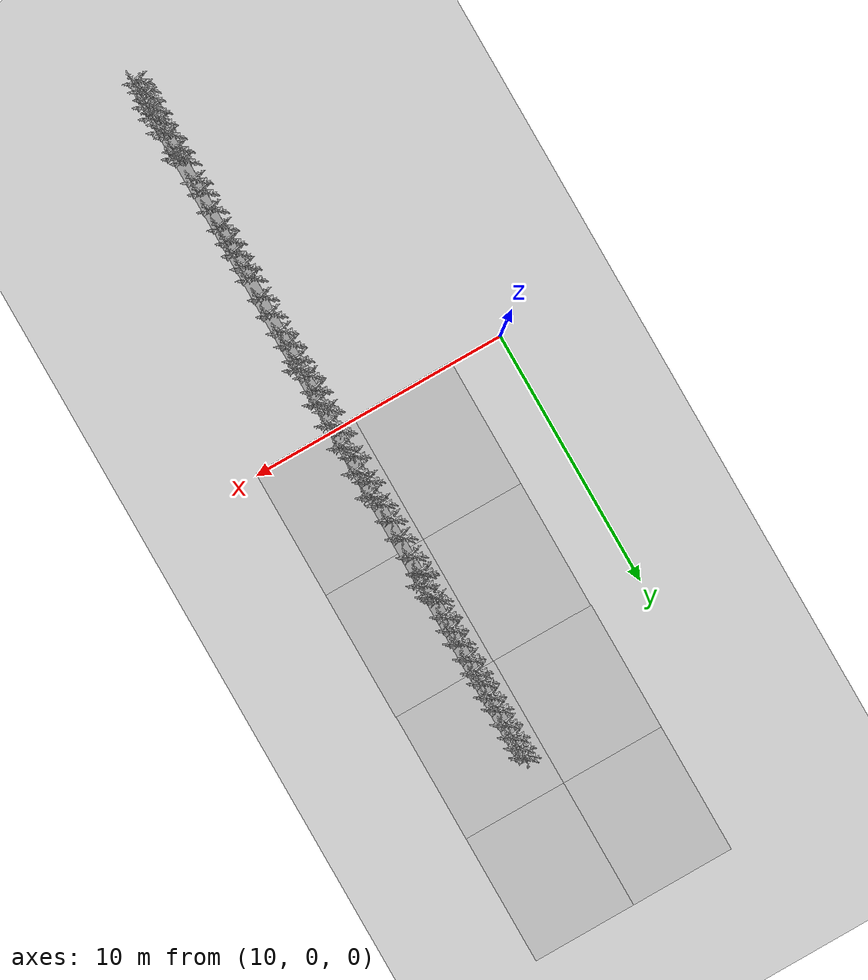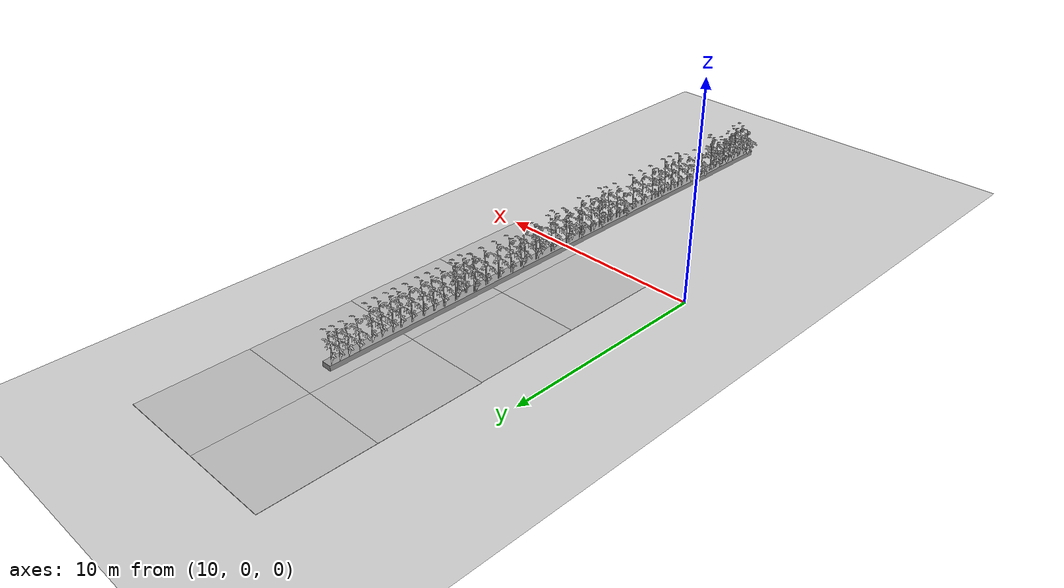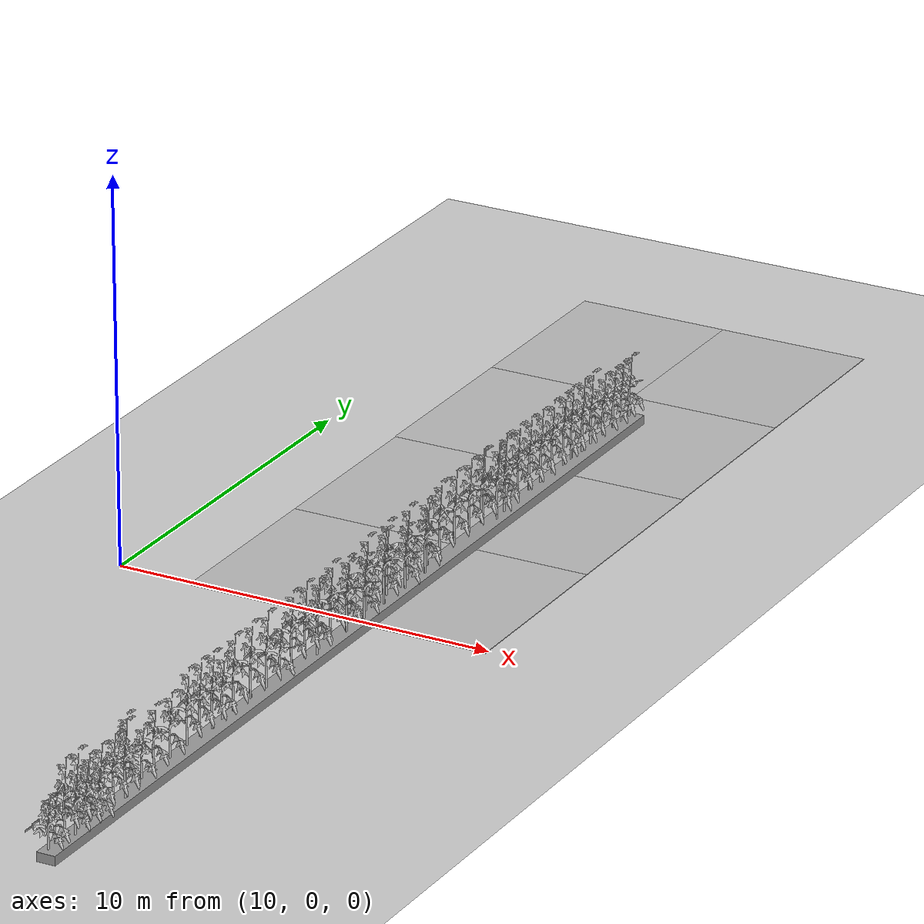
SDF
<sdf version="1.6">
 <world name="default">
  <model name="ground_plane">
   <static>1</static>
   <link name="link">
    <collision name="collision">
     <geometry><plane><normal>0 0 1</normal><size>100 100</size></plane></geometry>
     <surface>
      <contact><collide_bitmask>65535</collide_bitmask></contact>
      <friction><ode><mu>100</mu><mu2>50</mu2></ode></friction>
     </surface>
    </collision>
    <visual name="visual">
     <cast_shadows>0</cast_shadows>
     <geometry><plane><normal>0 0 1</normal><size>100 100</size></plane></geometry>
     <material>
      <script><uri>file://media/materials/scripts/gazebo.material</uri><name>Gazebo/Grey</name></script>
     </material>
    </visual>
   </link>
  </model>
  <model name="mud_box_2">
   <static>1</static>
   <link name="link">
    <collision name="collision"><geometry><box><size>8 10 0.02</size></box></geometry></collision>
    <visual name="visual_1">
     <pose>-2 2.5 0 0 -0 0</pose>
     <cast_shadows>0</cast_shadows>
     <geometry><box><size>4 5 0.02</size></box></geometry>
     <material>
      <script>
       <uri>model://mud_box/materials/scripts</uri>
       <uri>model://mud_box/materials/textures</uri>
       <name>vrc/mud</name>
      </script>
     </material>
    </visual>
    <visual name="visual_2">
     <pose>2 2.5 0 0 -0 0</pose>
     <cast_shadows>0</cast_shadows>
     <geometry><box><size>4 5 0.02</size></box></geometry>
     <material>
      <script>
       <uri>model://mud_box/materials/scripts</uri>
       <uri>model://mud_box/materials/textures</uri>
       <name>vrc/mud</name>
      </script>
     </material>
    </visual>
    <visual name="visual_3">
     <pose>2 -2.5 0 0 -0 0</pose>
     <cast_shadows>0</cast_shadows>
     <geometry><box><size>4 5 0.02</size></box></geometry>
     <material>
      <script>
       <uri>model://mud_box/materials/scripts</uri>
       <uri>model://mud_box/materials/textures</uri>
       <name>vrc/mud</name>
      </script>
     </material>
    </visual>
    <visual name="visual_4">
     <pose>-2 -2.5 0 0 -0 0</pose>
     <cast_shadows>0</cast_shadows>
     <geometry><box><size>4 5 0.02</size></box></geometry>
     <material>
      <script>
       <uri>model://mud_box/materials/scripts</uri>
       <uri>model://mud_box/materials/textures</uri>
       <name>vrc/mud</name>
      </script>
     </material>
    </visual>
   </link>
   <pose>15.95 14.8768 0 0 -0 0</pose>
  </model>
  <model name="mud_box_2_clone_3">
   <static>1</static>
   <link name="link">
    <collision name="collision"><geometry><box><size>8 10 0.02</size></box></geometry></collision>
    <visual name="visual_1">
     <pose>-2 2.5 0 0 -0 0</pose>
     <cast_shadows>0</cast_shadows>
     <geometry><box><size>4 5 0.02</size></box></geometry>
     <material>
      <script>
       <uri>model://mud_box/materials/scripts</uri>
       <uri>model://mud_box/materials/textures</uri>
       <name>vrc/mud</name>
      </script>
     </material>
    </visual>
    <visual name="visual_2">
     <pose>2 2.5 0 0 -0 0</pose>
     <cast_shadows>0</cast_shadows>
     <geometry><box><size>4 5 0.02</size></box></geometry>
     <material>
      <script>
       <uri>model://mud_box/materials/scripts</uri>
       <uri>model://mud_box/materials/textures</uri>
       <name>vrc/mud</name>
      </script>
     </material>
    </visual>
    <visual name="visual_3">
     <pose>2 -2.5 0 0 -0 0</pose>
     <cast_shadows>0</cast_shadows>
     <geometry><box><size>4 5 0.02</size></box></geometry>
     <material>
      <script>
       <uri>model://mud_box/materials/scripts</uri>
       <uri>model://mud_box/materials/textures</uri>
       <name>vrc/mud</name>
      </script>
     </material>
    </visual>
    <visual name="visual_4">
     <pose>-2 -2.5 0 0 -0 0</pose>
     <cast_shadows>0</cast_shadows>
     <geometry><box><size>4 5 0.02</size></box></geometry>
     <material>
      <script>
       <uri>model://mud_box/materials/scripts</uri>
       <uri>model://mud_box/materials/textures</uri>
       <name>vrc/mud</name>
      </script>
     </material>
    </visual>
   </link>
   <pose>15.9717 4.88727 0 0 -0 0</pose>
  </model>
  <model name="plant_base_clone_clone_0_clone">
   <link name="link">
    <inertial>
     <mass>1</mass>
     <inertia>
      <ixx>0.166667</ixx>
      <ixy>0</ixy>
      <ixz>0</ixz>
      <iyy>0.166667</iyy>
      <iyz>0</iyz>
      <izz>0.166667</izz>
     </inertia>
    </inertial>
    <visual name="visual">
     <geometry><box><size>0.484753 27.8593 0.235695</size></box></geometry>
     <material>
      <script><name>Gazebo/Grey</name><uri>file://media/materials/scripts/gazebo.material</uri></script>
     </material>
    </visual>
    <collision name="collision">
     <geometry><box><size>0.484753 27.8593 0.235695</size></box></geometry>
     <surface>
      <friction>
       <ode><mu>1</mu><mu2>1</mu2><fdir1>0 0 0</fdir1><slip1>0</slip1><slip2>0</slip2></ode>
       <torsional>
        <coefficient>1</coefficient>
        <patch_radius>0</patch_radius>
        <surface_radius>0</surface_radius>
        <use_patch_radius>1</use_patch_radius>
        <ode><slip>0</slip></ode>
       </torsional>
      </friction>
      <bounce><restitution_coefficient>0</restitution_coefficient><threshold>1e+06</threshold></bounce>
      <contact>
       <collide_without_contact>0</collide_without_contact>
       <collide_without_contact_bitmask>1</collide_without_contact_bitmask>
       <collide_bitmask>1</collide_bitmask>
       <ode>
        <soft_cfm>0</soft_cfm>
        <soft_erp>0.2</soft_erp>
        <kp>1e+13</kp>
        <kd>1</kd>
        <max_vel>0.01</max_vel>
        <min_depth>0</min_depth>
       </ode>
       <bullet>
        <split_impulse>1</split_impulse>
        <split_impulse_penetration_threshold>-0.01</split_impulse_penetration_threshold>
        <soft_cfm>0</soft_cfm>
        <soft_erp>0.2</soft_erp>
        <kp>1e+13</kp>
        <kd>1</kd>
       </bullet>
      </contact>
     </surface>
    </collision>
   </link>
   <static>1</static>
   <pose>16.7542 -0.411562 0.134309 0 -0 0</pose>
  </model>
  <model name="tomato_plant_medium_11">
   <static>1</static>
   <link name="link">
    <collision name="collision">
     <geometry>
      <mesh><scale>5e-06 5e-06 6e-06</scale><uri>model://tomato_plant_medium/meshes/tomato-plant.dae</uri></mesh>
     </geometry>
    </collision>
    <visual name="visual">
     <geometry>
      <mesh><scale>5e-06 5e-06 6e-06</scale><uri>model://tomato_plant_medium/meshes/tomato-plant.dae</uri></mesh>
     </geometry>
    </visual>
   </link>
   <pose>16.6663 12.9 0 0 -0 0</pose>
  </model>
  <model name="tomato_plant_medium_12">
   <static>1</static>
   <link name="link">
    <collision name="collision">
     <geometry>
      <mesh><scale>5e-06 5e-06 6e-06</scale><uri>model://tomato_plant_medium/meshes/tomato-plant.dae</uri></mesh>
     </geometry>
    </collision>
    <visual name="visual">
     <geometry>
      <mesh><scale>5e-06 5e-06 6e-06</scale><uri>model://tomato_plant_medium/meshes/tomato-plant.dae</uri></mesh>
     </geometry>
    </visual>
   </link>
   <pose>16.7001 13.2713 0.021757 0 -0 0</pose>
  </model>
  <model name="tomato_plant_medium_13">
   <static>1</static>
   <link name="link">
    <collision name="collision">
     <geometry>
      <mesh><scale>5e-06 5e-06 6e-06</scale><uri>model://tomato_plant_medium/meshes/tomato-plant.dae</uri></mesh>
     </geometry>
    </collision>
    <visual name="visual">
     <geometry>
      <mesh><scale>5e-06 5e-06 6e-06</scale><uri>model://tomato_plant_medium/meshes/tomato-plant.dae</uri></mesh>
     </geometry>
    </visual>
   </link>
   <pose>16.683 12.4521 0 0 -0 0</pose>
  </model>
  <model name="tomato_plant_medium_15">
   <static>1</static>
   <link name="link">
    <collision name="collision">
     <geometry>
      <mesh><scale>5e-06 5e-06 6e-06</scale><uri>model://tomato_plant_medium/meshes/tomato-plant.dae</uri></mesh>
     </geometry>
    </collision>
    <visual name="visual">
     <geometry>
      <mesh><scale>5e-06 5e-06 6e-06</scale><uri>model://tomato_plant_medium/meshes/tomato-plant.dae</uri></mesh>
     </geometry>
    </visual>
   </link>
   <pose>16.6728 11.9349 0 0 -0 0</pose>
  </model>
  <model name="tomato_plant_big_0">
   <static>1</static>
   <link name="link">
    <collision name="collision">
     <geometry>
      <mesh><scale>5e-06 5e-06 6e-06</scale><uri>model://tomato_plant_big/meshes/tomato-plant.dae</uri></mesh>
     </geometry>
    </collision>
    <visual name="visual">
     <geometry>
      <mesh><scale>5e-06 5e-06 7e-06</scale><uri>model://tomato_plant_big/meshes/tomato-plant.dae</uri></mesh>
     </geometry>
    </visual>
   </link>
   <pose>16.6663 11.3037 0 0 -0 0</pose>
  </model>
  <model name="tomato_plant_big_2">
   <static>1</static>
   <link name="link">
    <collision name="collision">
     <geometry>
      <mesh><scale>5e-06 5e-06 6e-06</scale><uri>model://tomato_plant_big/meshes/tomato-plant.dae</uri></mesh>
     </geometry>
    </collision>
    <visual name="visual">
     <geometry>
      <mesh><scale>5e-06 5e-06 7e-06</scale><uri>model://tomato_plant_big/meshes/tomato-plant.dae</uri></mesh>
     </geometry>
    </visual>
   </link>
   <pose>16.6968 10.7975 0 0 -0 0</pose>
  </model>
  <model name="tomato_plant_big_4">
   <static>1</static>
   <link name="link">
    <collision name="collision">
     <geometry>
      <mesh><scale>5e-06 5e-06 6e-06</scale><uri>model://tomato_plant_big/meshes/tomato-plant.dae</uri></mesh>
     </geometry>
    </collision>
    <visual name="visual">
     <geometry>
      <mesh><scale>5e-06 5e-06 7e-06</scale><uri>model://tomato_plant_big/meshes/tomato-plant.dae</uri></mesh>
     </geometry>
    </visual>
   </link>
   <pose>16.6745 10.2599 0 0 -0 0</pose>
  </model>
  <model name="tomato_plant_big_6">
   <static>1</static>
   <link name="link">
    <collision name="collision">
     <geometry>
      <mesh><scale>5e-06 5e-06 6e-06</scale><uri>model://tomato_plant_big/meshes/tomato-plant.dae</uri></mesh>
     </geometry>
    </collision>
    <visual name="visual">
     <geometry>
      <mesh><scale>5e-06 5e-06 7e-06</scale><uri>model://tomato_plant_big/meshes/tomato-plant.dae</uri></mesh>
     </geometry>
    </visual>
   </link>
   <pose>16.6882 9.83508 0 0 -0 0</pose>
  </model>
  <model name="tomato_plant_big_8">
   <static>1</static>
   <link name="link">
    <collision name="collision">
     <geometry>
      <mesh><scale>5e-06 5e-06 6e-06</scale><uri>model://tomato_plant_big/meshes/tomato-plant.dae</uri></mesh>
     </geometry>
    </collision>
    <visual name="visual">
     <geometry>
      <mesh><scale>5e-06 5e-06 7e-06</scale><uri>model://tomato_plant_big/meshes/tomato-plant.dae</uri></mesh>
     </geometry>
    </visual>
   </link>
   <pose>16.6704 9.2785 0 0 -0 0</pose>
  </model>
  <model name="tomato_plant_big_10">
   <static>1</static>
   <link name="link">
    <collision name="collision">
     <geometry>
      <mesh><scale>5e-06 5e-06 6e-06</scale><uri>model://tomato_plant_big/meshes/tomato-plant.dae</uri></mesh>
     </geometry>
    </collision>
    <visual name="visual">
     <geometry>
      <mesh><scale>5e-06 5e-06 7e-06</scale><uri>model://tomato_plant_big/meshes/tomato-plant.dae</uri></mesh>
     </geometry>
    </visual>
   </link>
   <pose>16.7063 8.63368 0 0 -0 0</pose>
  </model>
  <model name="tomato_plant_big_14">
   <static>1</static>
   <link name="link">
    <collision name="collision">
     <geometry>
      <mesh><scale>5e-06 5e-06 6e-06</scale><uri>model://tomato_plant_big/meshes/tomato-plant.dae</uri></mesh>
     </geometry>
    </collision>
    <visual name="visual">
     <geometry>
      <mesh><scale>5e-06 5e-06 7e-06</scale><uri>model://tomato_plant_big/meshes/tomato-plant.dae</uri></mesh>
     </geometry>
    </visual>
   </link>
   <pose>16.6728 8.11093 0 0 -0 0</pose>
  </model>
  <model name="tomato_plant_big_16">
   <static>1</static>
   <link name="link">
    <collision name="collision">
     <geometry>
      <mesh><scale>5e-06 5e-06 6e-06</scale><uri>model://tomato_plant_big/meshes/tomato-plant.dae</uri></mesh>
     </geometry>
    </collision>
    <visual name="visual">
     <geometry>
      <mesh><scale>5e-06 5e-06 7e-06</scale><uri>model://tomato_plant_big/meshes/tomato-plant.dae</uri></mesh>
     </geometry>
    </visual>
   </link>
   <pose>16.6437 7.58312 0 0 -0 0</pose>
  </model>
  <model name="tomato_plant_big_18">
   <static>1</static>
   <link name="link">
    <collision name="collision">
     <geometry>
      <mesh><scale>5e-06 5e-06 6e-06</scale><uri>model://tomato_plant_big/meshes/tomato-plant.dae</uri></mesh>
     </geometry>
    </collision>
    <visual name="visual">
     <geometry>
      <mesh><scale>5e-06 5e-06 7e-06</scale><uri>model://tomato_plant_big/meshes/tomato-plant.dae</uri></mesh>
     </geometry>
    </visual>
   </link>
   <pose>16.6313 6.93426 0 0 -0 0</pose>
  </model>
  <model name="tomato_plant_big_19">
   <static>1</static>
   <link name="link">
    <collision name="collision">
     <geometry>
      <mesh><scale>5e-06 5e-06 6e-06</scale><uri>model://tomato_plant_big/meshes/tomato-plant.dae</uri></mesh>
     </geometry>
    </collision>
    <visual name="visual">
     <geometry>
      <mesh><scale>5e-06 5e-06 7e-06</scale><uri>model://tomato_plant_big/meshes/tomato-plant.dae</uri></mesh>
     </geometry>
    </visual>
   </link>
   <pose>16.8073 6.22622 0 0 -0 0</pose>
  </model>
  <model name="tomato_plant_big_20">
   <static>1</static>
   <link name="link">
    <collision name="collision">
     <geometry>
      <mesh><scale>5e-06 5e-06 6e-06</scale><uri>model://tomato_plant_big/meshes/tomato-plant.dae</uri></mesh>
     </geometry>
    </collision>
    <visual name="visual">
     <geometry>
      <mesh><scale>5e-06 5e-06 7e-06</scale><uri>model://tomato_plant_big/meshes/tomato-plant.dae</uri></mesh>
     </geometry>
    </visual>
   </link>
   <pose>16.6107 5.88926 0 0 -0 0</pose>
  </model>
  <model name="tomato_plant_big_22">
   <static>1</static>
   <link name="link">
    <collision name="collision">
     <geometry>
      <mesh><scale>5e-06 5e-06 6e-06</scale><uri>model://tomato_plant_big/meshes/tomato-plant.dae</uri></mesh>
     </geometry>
    </collision>
    <visual name="visual">
     <geometry>
      <mesh><scale>5e-06 5e-06 7e-06</scale><uri>model://tomato_plant_big/meshes/tomato-plant.dae</uri></mesh>
     </geometry>
    </visual>
   </link>
   <pose>16.5972 5.83716 0 0 -0 0</pose>
  </model>
  <model name="tomato_plant_big_24">
   <static>1</static>
   <link name="link">
    <collision name="collision">
     <geometry>
      <mesh><scale>5e-06 5e-06 6e-06</scale><uri>model://tomato_plant_big/meshes/tomato-plant.dae</uri></mesh>
     </geometry>
    </collision>
    <visual name="visual">
     <geometry>
      <mesh><scale>5e-06 5e-06 7e-06</scale><uri>model://tomato_plant_big/meshes/tomato-plant.dae</uri></mesh>
     </geometry>
    </visual>
   </link>
   <pose>16.6268 5.17489 0 0 -0 0</pose>
  </model>
  <model name="tomato_plant_big_26">
   <static>1</static>
   <link name="link">
    <collision name="collision">
     <geometry>
      <mesh><scale>5e-06 5e-06 6e-06</scale><uri>model://tomato_plant_big/meshes/tomato-plant.dae</uri></mesh>
     </geometry>
    </collision>
    <visual name="visual">
     <geometry>
      <mesh><scale>5e-06 5e-06 7e-06</scale><uri>model://tomato_plant_big/meshes/tomato-plant.dae</uri></mesh>
     </geometry>
    </visual>
   </link>
   <pose>16.6396 4.42277 0 0 -0 0</pose>
  </model>
  <model name="tomato_plant_big_28">
   <static>1</static>
   <link name="link">
    <collision name="collision">
     <geometry>
      <mesh><scale>5e-06 5e-06 6e-06</scale><uri>model://tomato_plant_big/meshes/tomato-plant.dae</uri></mesh>
     </geometry>
    </collision>
    <visual name="visual">
     <geometry>
      <mesh><scale>5e-06 5e-06 7e-06</scale><uri>model://tomato_plant_big/meshes/tomato-plant.dae</uri></mesh>
     </geometry>
    </visual>
   </link>
   <pose>16.6302 3.69515 0 0 -0 0</pose>
  </model>
  <model name="tomato_plant_medium_28">
   <static>1</static>
   <link name="link">
    <collision name="collision">
     <geometry>
      <mesh><scale>5e-06 5e-06 6e-06</scale><uri>model://tomato_plant_medium/meshes/tomato-plant.dae</uri></mesh>
     </geometry>
    </collision>
    <visual name="visual">
     <geometry>
      <mesh><scale>5e-06 5e-06 6e-06</scale><uri>model://tomato_plant_medium/meshes/tomato-plant.dae</uri></mesh>
     </geometry>
    </visual>
   </link>
   <pose>16.6557 3.03767 0 0 -0 0</pose>
  </model>
  <model name="tomato_plant_big_30">
   <static>1</static>
   <link name="link">
    <collision name="collision">
     <geometry>
      <mesh><scale>5e-06 5e-06 6e-06</scale><uri>model://tomato_plant_big/meshes/tomato-plant.dae</uri></mesh>
     </geometry>
    </collision>
    <visual name="visual">
     <geometry>
      <mesh><scale>5e-06 5e-06 7e-06</scale><uri>model://tomato_plant_big/meshes/tomato-plant.dae</uri></mesh>
     </geometry>
    </visual>
   </link>
   <pose>16.8343 2.6317 0 0 -0 0</pose>
  </model>
  <model name="tomato_plant_big_31">
   <static>1</static>
   <link name="link">
    <collision name="collision">
     <geometry>
      <mesh><scale>5e-06 5e-06 6e-06</scale><uri>model://tomato_plant_big/meshes/tomato-plant.dae</uri></mesh>
     </geometry>
    </collision>
    <visual name="visual">
     <geometry>
      <mesh><scale>5e-06 5e-06 7e-06</scale><uri>model://tomato_plant_big/meshes/tomato-plant.dae</uri></mesh>
     </geometry>
    </visual>
   </link>
   <pose>16.6389 2.11003 0 0 -0 0</pose>
  </model>
  <model name="tomato_plant_medium_29">
   <static>1</static>
   <link name="link">
    <collision name="collision">
     <geometry>
      <mesh><scale>5e-06 5e-06 6e-06</scale><uri>model://tomato_plant_medium/meshes/tomato-plant.dae</uri></mesh>
     </geometry>
    </collision>
    <visual name="visual">
     <geometry>
      <mesh><scale>5e-06 5e-06 6e-06</scale><uri>model://tomato_plant_medium/meshes/tomato-plant.dae</uri></mesh>
     </geometry>
    </visual>
   </link>
   <pose>16.8288 1.66908 0 0 -0 0</pose>
  </model>
  <model name="tomato_plant_big_32">
   <static>1</static>
   <link name="link">
    <collision name="collision">
     <geometry>
      <mesh><scale>5e-06 5e-06 6e-06</scale><uri>model://tomato_plant_big/meshes/tomato-plant.dae</uri></mesh>
     </geometry>
    </collision>
    <visual name="visual">
     <geometry>
      <mesh><scale>5e-06 5e-06 7e-06</scale><uri>model://tomato_plant_big/meshes/tomato-plant.dae</uri></mesh>
     </geometry>
    </visual>
   </link>
   <pose>16.6395 1.11249 0 0 -0 0</pose>
  </model>
  <model name="tomato_plant_big_33">
   <static>1</static>
   <link name="link">
    <collision name="collision">
     <geometry>
      <mesh><scale>5e-06 5e-06 6e-06</scale><uri>model://tomato_plant_big/meshes/tomato-plant.dae</uri></mesh>
     </geometry>
    </collision>
    <visual name="visual">
     <geometry>
      <mesh><scale>5e-06 5e-06 7e-06</scale><uri>model://tomato_plant_big/meshes/tomato-plant.dae</uri></mesh>
     </geometry>
    </visual>
   </link>
   <pose>16.8267 0.645431 0 0 -0 0</pose>
  </model>
  <model name="tomato_plant_big_34">
   <static>1</static>
   <link name="link">
    <collision name="collision">
     <geometry>
      <mesh><scale>5e-06 5e-06 6e-06</scale><uri>model://tomato_plant_big/meshes/tomato-plant.dae</uri></mesh>
     </geometry>
    </collision>
    <visual name="visual">
     <geometry>
      <mesh><scale>5e-06 5e-06 7e-06</scale><uri>model://tomato_plant_big/meshes/tomato-plant.dae</uri></mesh>
     </geometry>
    </visual>
   </link>
   <pose>16.636 0.127232 0 0 -0 0</pose>
  </model>
  <model name="tomato_plant_medium_30">
   <static>1</static>
   <link name="link">
    <collision name="collision">
     <geometry>
      <mesh><scale>5e-06 5e-06 6e-06</scale><uri>model://tomato_plant_medium/meshes/tomato-plant.dae</uri></mesh>
     </geometry>
    </collision>
    <visual name="visual">
     <geometry>
      <mesh><scale>5e-06 5e-06 6e-06</scale><uri>model://tomato_plant_medium/meshes/tomato-plant.dae</uri></mesh>
     </geometry>
    </visual>
   </link>
   <pose>16.8214 -0.274519 0 0 -0 0</pose>
  </model>
  <model name="tomato_plant_medium_31">
   <static>1</static>
   <link name="link">
    <collision name="collision">
     <geometry>
      <mesh><scale>5e-06 5e-06 6e-06</scale><uri>model://tomato_plant_medium/meshes/tomato-plant.dae</uri></mesh>
     </geometry>
    </collision>
    <visual name="visual">
     <geometry>
      <mesh><scale>5e-06 5e-06 6e-06</scale><uri>model://tomato_plant_medium/meshes/tomato-plant.dae</uri></mesh>
     </geometry>
    </visual>
   </link>
   <pose>16.6311 -0.74991 0 0 -0 0</pose>
  </model>
  <model name="tomato_plant_big_35">
   <static>1</static>
   <link name="link">
    <collision name="collision">
     <geometry>
      <mesh><scale>5e-06 5e-06 6e-06</scale><uri>model://tomato_plant_big/meshes/tomato-plant.dae</uri></mesh>
     </geometry>
    </collision>
    <visual name="visual">
     <geometry>
      <mesh><scale>5e-06 5e-06 7e-06</scale><uri>model://tomato_plant_big/meshes/tomato-plant.dae</uri></mesh>
     </geometry>
    </visual>
   </link>
   <pose>16.8316 -1.12586 0 0 -0 0</pose>
  </model>
  <model name="tomato_plant_big_36">
   <static>1</static>
   <link name="link">
    <collision name="collision">
     <geometry>
      <mesh><scale>5e-06 5e-06 6e-06</scale><uri>model://tomato_plant_big/meshes/tomato-plant.dae</uri></mesh>
     </geometry>
    </collision>
    <visual name="visual">
     <geometry>
      <mesh><scale>5e-06 5e-06 7e-06</scale><uri>model://tomato_plant_big/meshes/tomato-plant.dae</uri></mesh>
     </geometry>
    </visual>
   </link>
   <pose>16.6424 -1.55478 0 0 -0 0</pose>
  </model>
  <model name="tomato_plant_big_37">
   <static>1</static>
   <link name="link">
    <collision name="collision">
     <geometry>
      <mesh><scale>5e-06 5e-06 6e-06</scale><uri>model://tomato_plant_big/meshes/tomato-plant.dae</uri></mesh>
     </geometry>
    </collision>
    <visual name="visual">
     <geometry>
      <mesh><scale>5e-06 5e-06 7e-06</scale><uri>model://tomato_plant_big/meshes/tomato-plant.dae</uri></mesh>
     </geometry>
    </visual>
   </link>
   <pose>16.7476 6.70737 0 0 -0 0</pose>
  </model>
  <model name="tomato_plant_medium_75">
   <static>1</static>
   <link name="link">
    <collision name="collision">
     <geometry>
      <mesh><scale>5e-06 5e-06 6e-06</scale><uri>model://tomato_plant_medium/meshes/tomato-plant.dae</uri></mesh>
     </geometry>
    </collision>
    <visual name="visual">
     <geometry>
      <mesh><scale>5e-06 5e-06 6e-06</scale><uri>model://tomato_plant_medium/meshes/tomato-plant.dae</uri></mesh>
     </geometry>
    </visual>
   </link>
   <pose>16.6324 -2.1269 0 0 -0 0</pose>
  </model>
  <model name="tomato_plant_big_45">
   <static>1</static>
   <link name="link">
    <collision name="collision">
     <geometry>
      <mesh><scale>5e-06 5e-06 6e-06</scale><uri>model://tomato_plant_big/meshes/tomato-plant.dae</uri></mesh>
     </geometry>
    </collision>
    <visual name="visual">
     <geometry>
      <mesh><scale>5e-06 5e-06 7e-06</scale><uri>model://tomato_plant_big/meshes/tomato-plant.dae</uri></mesh>
     </geometry>
    </visual>
   </link>
   <pose>16.844 -2.5362 0 0 -0 0</pose>
  </model>
  <model name="tomato_plant_big_46">
   <static>1</static>
   <link name="link">
    <collision name="collision">
     <geometry>
      <mesh><scale>5e-06 5e-06 6e-06</scale><uri>model://tomato_plant_big/meshes/tomato-plant.dae</uri></mesh>
     </geometry>
    </collision>
    <visual name="visual">
     <geometry>
      <mesh><scale>5e-06 5e-06 7e-06</scale><uri>model://tomato_plant_big/meshes/tomato-plant.dae</uri></mesh>
     </geometry>
    </visual>
   </link>
   <pose>16.6786 -2.81674 0 0 -0 0</pose>
  </model>
  <model name="tomato_plant_big_47">
   <static>1</static>
   <link name="link">
    <collision name="collision">
     <geometry>
      <mesh><scale>5e-06 5e-06 6e-06</scale><uri>model://tomato_plant_big/meshes/tomato-plant.dae</uri></mesh>
     </geometry>
    </collision>
    <visual name="visual">
     <geometry>
      <mesh><scale>5e-06 5e-06 7e-06</scale><uri>model://tomato_plant_big/meshes/tomato-plant.dae</uri></mesh>
     </geometry>
    </visual>
   </link>
   <pose>16.6604 -3.40263 0 0 -0 0</pose>
  </model>
  <model name="tomato_plant_small_25">
   <static>1</static>
   <link name="link">
    <collision name="collision">
     <geometry>
      <mesh><scale>5e-06 5e-06 5e-06</scale><uri>model://tomato_plant_small/meshes/tomato-plant.dae</uri></mesh>
     </geometry>
    </collision>
    <visual name="visual">
     <geometry>
      <mesh><scale>5e-06 5e-06 5e-06</scale><uri>model://tomato_plant_small/meshes/tomato-plant.dae</uri></mesh>
     </geometry>
    </visual>
   </link>
   <pose>16.6786 -3.96918 -0 0 -0 0</pose>
  </model>
  <model name="tomato_plant_big_51">
   <static>1</static>
   <link name="link">
    <collision name="collision">
     <geometry>
      <mesh><scale>5e-06 5e-06 6e-06</scale><uri>model://tomato_plant_big/meshes/tomato-plant.dae</uri></mesh>
     </geometry>
    </collision>
    <visual name="visual">
     <geometry>
      <mesh><scale>5e-06 5e-06 7e-06</scale><uri>model://tomato_plant_big/meshes/tomato-plant.dae</uri></mesh>
     </geometry>
    </visual>
   </link>
   <pose>16.7159 -4.6447 0 0 -0 0</pose>
  </model>
  <model name="tomato_plant_big_53">
   <static>1</static>
   <link name="link">
    <collision name="collision">
     <geometry>
      <mesh><scale>5e-06 5e-06 6e-06</scale><uri>model://tomato_plant_big/meshes/tomato-plant.dae</uri></mesh>
     </geometry>
    </collision>
    <visual name="visual">
     <geometry>
      <mesh><scale>5e-06 5e-06 7e-06</scale><uri>model://tomato_plant_big/meshes/tomato-plant.dae</uri></mesh>
     </geometry>
    </visual>
   </link>
   <pose>16.6804 -5.30724 0 0 -0 0</pose>
  </model>
  <model name="tomato_plant_big_55">
   <static>1</static>
   <link name="link">
    <collision name="collision">
     <geometry>
      <mesh><scale>5e-06 5e-06 6e-06</scale><uri>model://tomato_plant_big/meshes/tomato-plant.dae</uri></mesh>
     </geometry>
    </collision>
    <visual name="visual">
     <geometry>
      <mesh><scale>5e-06 5e-06 7e-06</scale><uri>model://tomato_plant_big/meshes/tomato-plant.dae</uri></mesh>
     </geometry>
    </visual>
   </link>
   <pose>16.6864 -6.08791 0 0 -0 0</pose>
  </model>
  <model name="tomato_plant_medium_77">
   <static>1</static>
   <link name="link">
    <collision name="collision">
     <geometry>
      <mesh><scale>5e-06 5e-06 6e-06</scale><uri>model://tomato_plant_medium/meshes/tomato-plant.dae</uri></mesh>
     </geometry>
    </collision>
    <visual name="visual">
     <geometry>
      <mesh><scale>5e-06 5e-06 6e-06</scale><uri>model://tomato_plant_medium/meshes/tomato-plant.dae</uri></mesh>
     </geometry>
    </visual>
   </link>
   <pose>16.6732 -6.57129 0 0 -0 0</pose>
  </model>
  <model name="tomato_plant_big_57">
   <static>1</static>
   <link name="link">
    <collision name="collision">
     <geometry>
      <mesh><scale>5e-06 5e-06 6e-06</scale><uri>model://tomato_plant_big/meshes/tomato-plant.dae</uri></mesh>
     </geometry>
    </collision>
    <visual name="visual">
     <geometry>
      <mesh><scale>5e-06 5e-06 7e-06</scale><uri>model://tomato_plant_big/meshes/tomato-plant.dae</uri></mesh>
     </geometry>
    </visual>
   </link>
   <pose>16.7236 -7.11004 0 0 -0 0</pose>
  </model>
  <model name="tomato_plant_big_58">
   <static>1</static>
   <link name="link">
    <collision name="collision">
     <geometry>
      <mesh><scale>5e-06 5e-06 6e-06</scale><uri>model://tomato_plant_big/meshes/tomato-plant.dae</uri></mesh>
     </geometry>
    </collision>
    <visual name="visual">
     <geometry>
      <mesh><scale>5e-06 5e-06 7e-06</scale><uri>model://tomato_plant_big/meshes/tomato-plant.dae</uri></mesh>
     </geometry>
    </visual>
   </link>
   <pose>16.6824 -7.58839 0 0 -0 0</pose>
  </model>
  <model name="tomato_plant_big_60">
   <static>1</static>
   <link name="link">
    <collision name="collision">
     <geometry>
      <mesh><scale>5e-06 5e-06 6e-06</scale><uri>model://tomato_plant_big/meshes/tomato-plant.dae</uri></mesh>
     </geometry>
    </collision>
    <visual name="visual">
     <geometry>
      <mesh><scale>5e-06 5e-06 7e-06</scale><uri>model://tomato_plant_big/meshes/tomato-plant.dae</uri></mesh>
     </geometry>
    </visual>
   </link>
   <pose>16.6773 -8.14301 0 0 -0 0</pose>
  </model>
  <model name="tomato_plant_medium_79">
   <static>1</static>
   <link name="link">
    <collision name="collision">
     <geometry>
      <mesh><scale>5e-06 5e-06 6e-06</scale><uri>model://tomato_plant_medium/meshes/tomato-plant.dae</uri></mesh>
     </geometry>
    </collision>
    <visual name="visual">
     <geometry>
      <mesh><scale>5e-06 5e-06 6e-06</scale><uri>model://tomato_plant_medium/meshes/tomato-plant.dae</uri></mesh>
     </geometry>
    </visual>
   </link>
   <pose>16.6807 -8.89577 0 0 -0 0</pose>
  </model>
  <model name="tomato_plant_medium_81">
   <static>1</static>
   <link name="link">
    <collision name="collision">
     <geometry>
      <mesh><scale>5e-06 5e-06 6e-06</scale><uri>model://tomato_plant_medium/meshes/tomato-plant.dae</uri></mesh>
     </geometry>
    </collision>
    <visual name="visual">
     <geometry>
      <mesh><scale>5e-06 5e-06 6e-06</scale><uri>model://tomato_plant_medium/meshes/tomato-plant.dae</uri></mesh>
     </geometry>
    </visual>
   </link>
   <pose>16.6744 -9.60024 0 0 -0 0</pose>
  </model>
  <model name="tomato_plant_small_26">
   <static>1</static>
   <link name="link">
    <collision name="collision">
     <geometry>
      <mesh><scale>5e-06 5e-06 5e-06</scale><uri>model://tomato_plant_small/meshes/tomato-plant.dae</uri></mesh>
     </geometry>
    </collision>
    <visual name="visual">
     <geometry>
      <mesh><scale>5e-06 5e-06 5e-06</scale><uri>model://tomato_plant_small/meshes/tomato-plant.dae</uri></mesh>
     </geometry>
    </visual>
   </link>
   <pose>16.6557 -10.0891 0 0 -0 0</pose>
  </model>
  <model name="tomato_plant_big_63">
   <static>1</static>
   <link name="link">
    <collision name="collision">
     <geometry>
      <mesh><scale>5e-06 5e-06 6e-06</scale><uri>model://tomato_plant_big/meshes/tomato-plant.dae</uri></mesh>
     </geometry>
    </collision>
    <visual name="visual">
     <geometry>
      <mesh><scale>5e-06 5e-06 7e-06</scale><uri>model://tomato_plant_big/meshes/tomato-plant.dae</uri></mesh>
     </geometry>
    </visual>
   </link>
   <pose>16.6776 -10.8281 0 0 -0 0</pose>
  </model>
  <model name="tomato_plant_big_64">
   <static>1</static>
   <link name="link">
    <collision name="collision">
     <geometry>
      <mesh><scale>5e-06 5e-06 6e-06</scale><uri>model://tomato_plant_big/meshes/tomato-plant.dae</uri></mesh>
     </geometry>
    </collision>
    <visual name="visual">
     <geometry>
      <mesh><scale>5e-06 5e-06 7e-06</scale><uri>model://tomato_plant_big/meshes/tomato-plant.dae</uri></mesh>
     </geometry>
    </visual>
   </link>
   <pose>16.8374 -11.1113 0 0 -0 0</pose>
  </model>
  <model name="tomato_plant_medium_83">
   <static>1</static>
   <link name="link">
    <collision name="collision">
     <geometry>
      <mesh><scale>5e-06 5e-06 6e-06</scale><uri>model://tomato_plant_medium/meshes/tomato-plant.dae</uri></mesh>
     </geometry>
    </collision>
    <visual name="visual">
     <geometry>
      <mesh><scale>5e-06 5e-06 6e-06</scale><uri>model://tomato_plant_medium/meshes/tomato-plant.dae</uri></mesh>
     </geometry>
    </visual>
   </link>
   <pose>16.6718 -11.3412 0 0 -0 0</pose>
  </model>
  <model name="tomato_plant_medium_84">
   <static>1</static>
   <link name="link">
    <collision name="collision">
     <geometry>
      <mesh><scale>5e-06 5e-06 6e-06</scale><uri>model://tomato_plant_medium/meshes/tomato-plant.dae</uri></mesh>
     </geometry>
    </collision>
    <visual name="visual">
     <geometry>
      <mesh><scale>5e-06 5e-06 6e-06</scale><uri>model://tomato_plant_medium/meshes/tomato-plant.dae</uri></mesh>
     </geometry>
    </visual>
   </link>
   <pose>16.6792 -11.9091 0 0 -0 0</pose>
  </model>
  <model name="tomato_plant_small_27">
   <static>1</static>
   <link name="link">
    <collision name="collision">
     <geometry>
      <mesh><scale>5e-06 5e-06 5e-06</scale><uri>model://tomato_plant_small/meshes/tomato-plant.dae</uri></mesh>
     </geometry>
    </collision>
    <visual name="visual">
     <geometry>
      <mesh><scale>5e-06 5e-06 5e-06</scale><uri>model://tomato_plant_small/meshes/tomato-plant.dae</uri></mesh>
     </geometry>
    </visual>
   </link>
   <pose>16.837 -12.2236 0 0 -0 0</pose>
  </model>
  <model name="tomato_plant_medium_85">
   <static>1</static>
   <link name="link">
    <collision name="collision">
     <geometry>
      <mesh><scale>5e-06 5e-06 6e-06</scale><uri>model://tomato_plant_medium/meshes/tomato-plant.dae</uri></mesh>
     </geometry>
    </collision>
    <visual name="visual">
     <geometry>
      <mesh><scale>5e-06 5e-06 6e-06</scale><uri>model://tomato_plant_medium/meshes/tomato-plant.dae</uri></mesh>
     </geometry>
    </visual>
   </link>
   <pose>16.703 -12.4683 0 0 -0 0</pose>
  </model>
  <model name="tomato_plant_medium_86">
   <static>1</static>
   <link name="link">
    <collision name="collision">
     <geometry>
      <mesh><scale>5e-06 5e-06 6e-06</scale><uri>model://tomato_plant_medium/meshes/tomato-plant.dae</uri></mesh>
     </geometry>
    </collision>
    <visual name="visual">
     <geometry>
      <mesh><scale>5e-06 5e-06 6e-06</scale><uri>model://tomato_plant_medium/meshes/tomato-plant.dae</uri></mesh>
     </geometry>
    </visual>
   </link>
   <pose>16.8434 -12.7631 0 0 -0 0</pose>
  </model>
  <model name="tomato_plant_big_66">
   <static>1</static>
   <link name="link">
    <collision name="collision">
     <geometry>
      <mesh><scale>5e-06 5e-06 6e-06</scale><uri>model://tomato_plant_big/meshes/tomato-plant.dae</uri></mesh>
     </geometry>
    </collision>
    <visual name="visual">
     <geometry>
      <mesh><scale>5e-06 5e-06 7e-06</scale><uri>model://tomato_plant_big/meshes/tomato-plant.dae</uri></mesh>
     </geometry>
    </visual>
   </link>
   <pose>16.6765 -12.8969 0 0 -0 0</pose>
  </model>
  <model name="tomato_plant_medium_87">
   <static>1</static>
   <link name="link">
    <collision name="collision">
     <geometry>
      <mesh><scale>5e-06 5e-06 6e-06</scale><uri>model://tomato_plant_medium/meshes/tomato-plant.dae</uri></mesh>
     </geometry>
    </collision>
    <visual name="visual">
     <geometry>
      <mesh><scale>5e-06 5e-06 6e-06</scale><uri>model://tomato_plant_medium/meshes/tomato-plant.dae</uri></mesh>
     </geometry>
    </visual>
   </link>
   <pose>16.837 -13.2253 0 0 -0 0</pose>
  </model>
  <model name="tomato_plant_big_67">
   <static>1</static>
   <link name="link">
    <collision name="collision">
     <geometry>
      <mesh><scale>5e-06 5e-06 6e-06</scale><uri>model://tomato_plant_big/meshes/tomato-plant.dae</uri></mesh>
     </geometry>
    </collision>
    <visual name="visual">
     <geometry>
      <mesh><scale>5e-06 5e-06 7e-06</scale><uri>model://tomato_plant_big/meshes/tomato-plant.dae</uri></mesh>
     </geometry>
    </visual>
   </link>
   <pose>16.6771 -13.4231 0 0 -0 0</pose>
  </model>
  <model name="tomato_plant_small_28">
   <static>1</static>
   <link name="link">
    <collision name="collision">
     <geometry>
      <mesh><scale>5e-06 5e-06 5e-06</scale><uri>model://tomato_plant_small/meshes/tomato-plant.dae</uri></mesh>
     </geometry>
    </collision>
    <visual name="visual">
     <geometry>
      <mesh><scale>5e-06 5e-06 5e-06</scale><uri>model://tomato_plant_small/meshes/tomato-plant.dae</uri></mesh>
     </geometry>
    </visual>
   </link>
   <pose>16.6631 -13.7985 0 0 -0 0</pose>
  </model>
  <model name="tomato_plant_small_30">
   <static>1</static>
   <link name="link">
    <collision name="collision">
     <geometry>
      <mesh><scale>5e-06 5e-06 5e-06</scale><uri>model://tomato_plant_small/meshes/tomato-plant.dae</uri></mesh>
     </geometry>
    </collision>
    <visual name="visual">
     <geometry>
      <mesh><scale>5e-06 5e-06 5e-06</scale><uri>model://tomato_plant_small/meshes/tomato-plant.dae</uri></mesh>
     </geometry>
    </visual>
   </link>
   <pose>16.7041 -14.1413 0 0 -0 0</pose>
  </model>
 </world>
</sdf>
